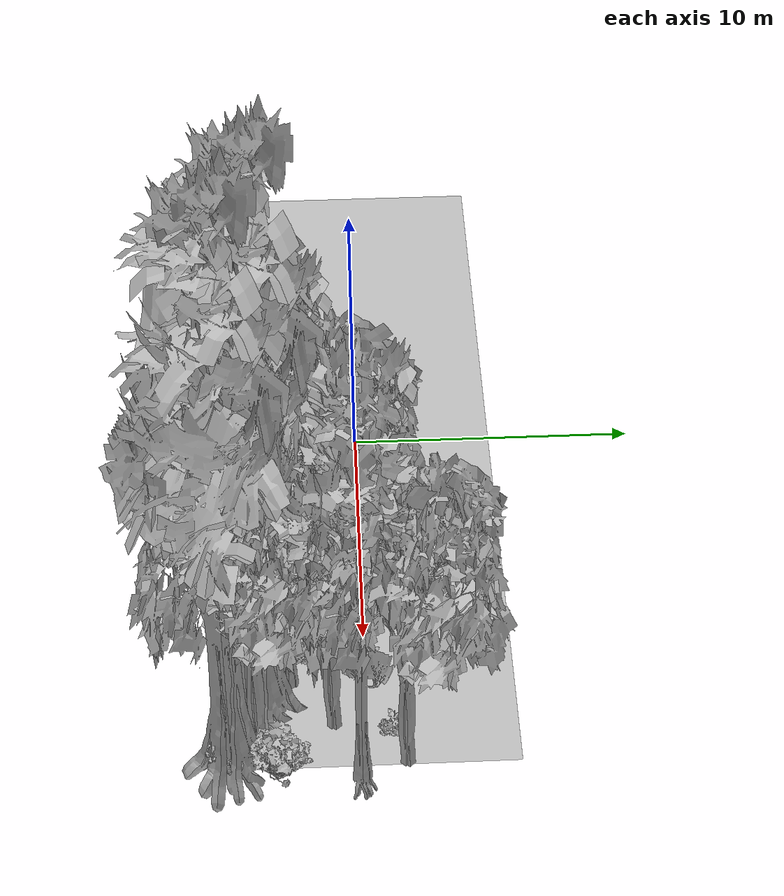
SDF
<sdf version="1.7">
 <world name="default">
  <model name="ground_plane">
   <static>1</static>
   <link name="link">
    <collision name="collision">
     <geometry><plane><normal>0 0 1</normal><size>100 100</size></plane></geometry>
     <surface><contact><ode><min_depth>0.01</min_depth><max_vel>0</max_vel></ode></contact></surface>
    </collision>
    <visual name="grass">
     <cast_shadows>0</cast_shadows>
     <geometry>
      <mesh>
       <scale>0.5814285714285714 0.18142857142857144 0.1</scale>
       <uri>file://grass_plane/meshes/grass_plane.dae</uri>
      </mesh>
     </geometry>
    </visual>
   </link>
  </model>
  <model name="Tree 55">
   <static>1</static>
   <pose>10.165083832850328 -1.4114663123511235 0 1.57079 -0 0</pose>
   <link name="link">
    <collision name="collision">
     <geometry><mesh><scale>3.5 5 3.5</scale><uri>model://tree_2/meshes/tree_2.obj</uri></mesh></geometry>
    </collision>
    <visual name="visual">
     <geometry><mesh><scale>3.5 5 3.5</scale><uri>model://tree_2/meshes/tree_2.obj</uri></mesh></geometry>
    </visual>
   </link>
  </model>
  <model name="Tree 77">
   <static>1</static>
   <pose>12.063548394133768 -2.4924689426412847 0 1.57079 -0 0</pose>
   <link name="link">
    <collision name="collision">
     <geometry><mesh><scale>3.5 5 3.5</scale><uri>model://tree_9/meshes/tree_9.obj</uri></mesh></geometry>
    </collision>
    <visual name="visual">
     <geometry><mesh><scale>3.5 5 3.5</scale><uri>model://tree_9/meshes/tree_9.obj</uri></mesh></geometry>
    </visual>
   </link>
  </model>
  <model name="Tree 87">
   <static>1</static>
   <pose>13.863189213765871 -1.0772737865282398 0 1.57079 -0 0</pose>
   <link name="link">
    <collision name="collision">
     <geometry><mesh><scale>3.5 5 3.5</scale><uri>model://tree_2/meshes/tree_2.obj</uri></mesh></geometry>
    </collision>
    <visual name="visual">
     <geometry><mesh><scale>3.5 5 3.5</scale><uri>model://tree_2/meshes/tree_2.obj</uri></mesh></geometry>
    </visual>
   </link>
  </model>
  <model name="Tree 118">
   <static>1</static>
   <pose>16.178283019409747 -0.1981566864669997 0 1.57079 -0 0</pose>
   <link name="link">
    <collision name="collision">
     <geometry><mesh><scale>3.5 5 3.5</scale><uri>model://tree_9/meshes/tree_9.obj</uri></mesh></geometry>
    </collision>
    <visual name="visual">
     <geometry><mesh><scale>3.5 5 3.5</scale><uri>model://tree_9/meshes/tree_9.obj</uri></mesh></geometry>
    </visual>
   </link>
  </model>
  <model name="Tree 150">
   <static>1</static>
   <pose>13.15626976367949 -3.6498091526530114 0 1.57079 -0 0</pose>
   <link name="link">
    <collision name="collision">
     <geometry><mesh><scale>3.5 5 3.5</scale><uri>model://tree_9/meshes/tree_9.obj</uri></mesh></geometry>
    </collision>
    <visual name="visual">
     <geometry><mesh><scale>3.5 5 3.5</scale><uri>model://tree_9/meshes/tree_9.obj</uri></mesh></geometry>
    </visual>
   </link>
  </model>
  <model name="Tree 188">
   <static>1</static>
   <pose>8.510314359810415 -1.6745676334272375 0 1.57079 -0 0</pose>
   <link name="link">
    <collision name="collision">
     <geometry><mesh><scale>3.5 5 3.5</scale><uri>model://tree_2/meshes/tree_2.obj</uri></mesh></geometry>
    </collision>
    <visual name="visual">
     <geometry><mesh><scale>3.5 5 3.5</scale><uri>model://tree_2/meshes/tree_2.obj</uri></mesh></geometry>
    </visual>
   </link>
  </model>
  <model name="Tree 243">
   <static>1</static>
   <pose>13.249122517341341 -3.3035880286865265 0 1.57079 -0 0</pose>
   <link name="link">
    <collision name="collision">
     <geometry><mesh><scale>3.5 5 3.5</scale><uri>model://tree_4/meshes/tree_4.obj</uri></mesh></geometry>
    </collision>
    <visual name="visual">
     <geometry><mesh><scale>3.5 5 3.5</scale><uri>model://tree_4/meshes/tree_4.obj</uri></mesh></geometry>
    </visual>
   </link>
  </model>
  <model name="Tree 281">
   <static>1</static>
   <pose>15.697385043427758 -4.275484250349372 0 1.57079 -0 0</pose>
   <link name="link">
    <collision name="collision">
     <geometry><mesh><scale>3.5 5 3.5</scale><uri>model://tree_4/meshes/tree_4.obj</uri></mesh></geometry>
    </collision>
    <visual name="visual">
     <geometry><mesh><scale>3.5 5 3.5</scale><uri>model://tree_4/meshes/tree_4.obj</uri></mesh></geometry>
    </visual>
   </link>
  </model>
  <model name="Tree 329">
   <static>1</static>
   <pose>14.574195377791717 -3.4731668839363845 0 1.57079 -0 0</pose>
   <link name="link">
    <collision name="collision">
     <geometry><mesh><scale>3.5 5 3.5</scale><uri>model://tree_2/meshes/tree_2.obj</uri></mesh></geometry>
    </collision>
    <visual name="visual">
     <geometry><mesh><scale>3.5 5 3.5</scale><uri>model://tree_2/meshes/tree_2.obj</uri></mesh></geometry>
    </visual>
   </link>
  </model>
  <model name="Tree 340">
   <static>1</static>
   <pose>14.398033092703344 -3.765846577039042 0 1.57079 -0 0</pose>
   <link name="link">
    <collision name="collision">
     <geometry><mesh><scale>3.5 5 3.5</scale><uri>model://tree_9/meshes/tree_9.obj</uri></mesh></geometry>
    </collision>
    <visual name="visual">
     <geometry><mesh><scale>3.5 5 3.5</scale><uri>model://tree_9/meshes/tree_9.obj</uri></mesh></geometry>
    </visual>
   </link>
  </model>
  <model name="Tree 344">
   <static>1</static>
   <pose>9.559008225013613 -0.9546449470105163 0 1.57079 -0 0</pose>
   <link name="link">
    <collision name="collision">
     <geometry><mesh><scale>3.5 5 3.5</scale><uri>model://tree_2/meshes/tree_2.obj</uri></mesh></geometry>
    </collision>
    <visual name="visual">
     <geometry><mesh><scale>3.5 5 3.5</scale><uri>model://tree_2/meshes/tree_2.obj</uri></mesh></geometry>
    </visual>
   </link>
  </model>
  <model name="Tree 354">
   <static>1</static>
   <pose>15.543713318781556 1.2282675774178067 0 1.57079 -0 0</pose>
   <link name="link">
    <collision name="collision">
     <geometry><mesh><scale>3.5 5 3.5</scale><uri>model://tree_2/meshes/tree_2.obj</uri></mesh></geometry>
    </collision>
    <visual name="visual">
     <geometry><mesh><scale>3.5 5 3.5</scale><uri>model://tree_2/meshes/tree_2.obj</uri></mesh></geometry>
    </visual>
   </link>
  </model>
  <model name="Bush 22">
   <static>1</static>
   <pose>15.63909982593762 -2.3402440521024754 0 1.57079 -0 0</pose>
   <link name="link">
    <collision name="collision">
     <geometry><mesh><scale>2 2 2</scale><uri>model://bush_3/meshes/bush_3.obj</uri></mesh></geometry>
     <surface><contact><collide_without_contact>false</collide_without_contact></contact></surface>
    </collision>
    <visual name="visual">
     <geometry><mesh><scale>2 2 2</scale><uri>model://bush_3/meshes/bush_3.obj</uri></mesh></geometry>
    </visual>
   </link>
  </model>
  <model name="Bush 65">
   <static>1</static>
   <pose>14.066969468166917 0.8658900155781488 0 1.57079 -0 0</pose>
   <link name="link">
    <collision name="collision">
     <geometry><mesh><scale>2 2 2</scale><uri>model://bush_2/meshes/bush_2.obj</uri></mesh></geometry>
     <surface><contact><collide_without_contact>false</collide_without_contact></contact></surface>
    </collision>
    <visual name="visual">
     <geometry><mesh><scale>2 2 2</scale><uri>model://bush_2/meshes/bush_2.obj</uri></mesh></geometry>
    </visual>
   </link>
  </model>
  <model name="Bush 85">
   <static>1</static>
   <pose>12.268583882959959 0.3061560130357197 0 1.57079 -0 0</pose>
   <link name="link">
    <collision name="collision">
     <geometry><mesh><scale>2 2 2</scale><uri>model://bush_5/meshes/bush_5.obj</uri></mesh></geometry>
     <surface><contact><collide_without_contact>false</collide_without_contact></contact></surface>
    </collision>
    <visual name="visual">
     <geometry><mesh><scale>2 2 2</scale><uri>model://bush_5/meshes/bush_5.obj</uri></mesh></geometry>
    </visual>
   </link>
  </model>
  <model name="Bush 88">
   <static>1</static>
   <pose>16.141757532093806 -4.257333616167822 0 1.57079 -0 0</pose>
   <link name="link">
    <collision name="collision">
     <geometry><mesh><scale>2 2 2</scale><uri>model://bush_5/meshes/bush_5.obj</uri></mesh></geometry>
     <surface><contact><collide_without_contact>false</collide_without_contact></contact></surface>
    </collision>
    <visual name="visual">
     <geometry><mesh><scale>2 2 2</scale><uri>model://bush_5/meshes/bush_5.obj</uri></mesh></geometry>
    </visual>
   </link>
  </model>
  <model name="Bush 129">
   <static>1</static>
   <pose>11.617766220003894 -3.713179780074542 0 1.57079 -0 0</pose>
   <link name="link">
    <collision name="collision">
     <geometry><mesh><scale>2 2 2</scale><uri>model://bush_1/meshes/bush_1.obj</uri></mesh></geometry>
     <surface><contact><collide_without_contact>false</collide_without_contact></contact></surface>
    </collision>
    <visual name="visual">
     <geometry><mesh><scale>2 2 2</scale><uri>model://bush_1/meshes/bush_1.obj</uri></mesh></geometry>
    </visual>
   </link>
  </model>
  <model name="Bush 146">
   <static>1</static>
   <pose>16.059286945584674 -2.868726955135619 0 1.57079 -0 0</pose>
   <link name="link">
    <collision name="collision">
     <geometry><mesh><scale>2 2 2</scale><uri>model://bush_4/meshes/bush_4.obj</uri></mesh></geometry>
     <surface><contact><collide_without_contact>false</collide_without_contact></contact></surface>
    </collision>
    <visual name="visual">
     <geometry><mesh><scale>2 2 2</scale><uri>model://bush_4/meshes/bush_4.obj</uri></mesh></geometry>
    </visual>
   </link>
  </model>
  <model name="Bush 159">
   <static>1</static>
   <pose>13.179434147731904 -3.373244307204372 0 1.57079 -0 0</pose>
   <link name="link">
    <collision name="collision">
     <geometry><mesh><scale>2 2 2</scale><uri>model://bush_2/meshes/bush_2.obj</uri></mesh></geometry>
     <surface><contact><collide_without_contact>false</collide_without_contact></contact></surface>
    </collision>
    <visual name="visual">
     <geometry><mesh><scale>2 2 2</scale><uri>model://bush_2/meshes/bush_2.obj</uri></mesh></geometry>
    </visual>
   </link>
  </model>
  <model name="Bush 273">
   <static>1</static>
   <pose>10.758716560796088 -1.917490961957398 0 1.57079 -0 0</pose>
   <link name="link">
    <collision name="collision">
     <geometry><mesh><scale>2 2 2</scale><uri>model://bush_2/meshes/bush_2.obj</uri></mesh></geometry>
     <surface><contact><collide_without_contact>false</collide_without_contact></contact></surface>
    </collision>
    <visual name="visual">
     <geometry><mesh><scale>2 2 2</scale><uri>model://bush_2/meshes/bush_2.obj</uri></mesh></geometry>
    </visual>
   </link>
  </model>
  <model name="Bush 314">
   <static>1</static>
   <pose>8.68051253676041 -4.546619938295285 0 1.57079 -0 0</pose>
   <link name="link">
    <collision name="collision">
     <geometry><mesh><scale>2 2 2</scale><uri>model://bush_5/meshes/bush_5.obj</uri></mesh></geometry>
     <surface><contact><collide_without_contact>false</collide_without_contact></contact></surface>
    </collision>
    <visual name="visual">
     <geometry><mesh><scale>2 2 2</scale><uri>model://bush_5/meshes/bush_5.obj</uri></mesh></geometry>
    </visual>
   </link>
  </model>
  <model name="Bush 329">
   <static>1</static>
   <pose>15.683017828448968 -3.10726127549162 0 1.57079 -0 0</pose>
   <link name="link">
    <collision name="collision">
     <geometry><mesh><scale>2 2 2</scale><uri>model://bush_1/meshes/bush_1.obj</uri></mesh></geometry>
     <surface><contact><collide_without_contact>false</collide_without_contact></contact></surface>
    </collision>
    <visual name="visual">
     <geometry><mesh><scale>2 2 2</scale><uri>model://bush_1/meshes/bush_1.obj</uri></mesh></geometry>
    </visual>
   </link>
  </model>
 </world>
</sdf>
